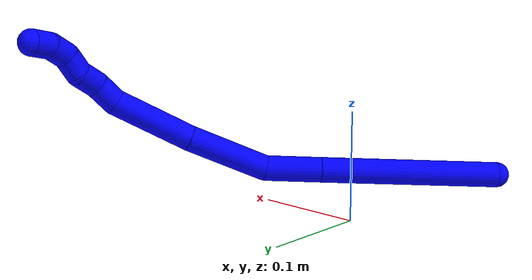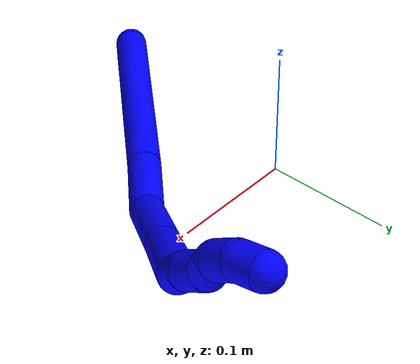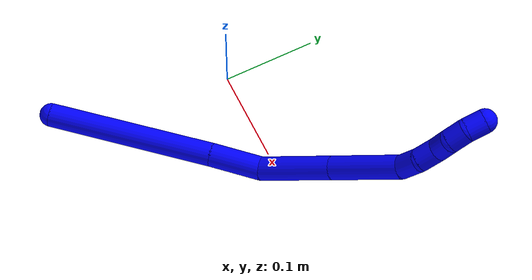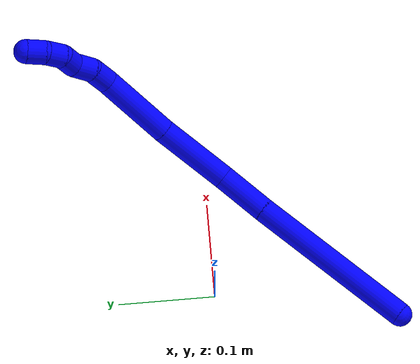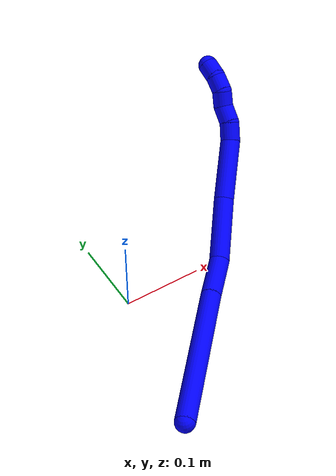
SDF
<sdf version="1.7">
 <world name="default">
  <plugin name="TubeGeneratorPlugin" filename="libtube_generator_plugin.so"/>
  <model name="photoneo_s_sensor">
   <static>1</static>
   <pose>0 0 2 1.57079 1.57079 3.14159</pose>
   <link name="link">
    <inertial><mass>0.1</mass></inertial>
    <sensor name="sensor" type="depth">
     <update_rate>30</update_rate>
     <camera>
      <horizontal_fov>1.22</horizontal_fov>
      <image><width>1920</width><height>1200</height><format>B8G8R8</format></image>
      <clip><near>0.1</near><far>4</far></clip>
      <depth_camera><output>points</output></depth_camera>
     </camera>
     <plugin name="camera_plugin" filename="libgazebo_ros_depth_camera.so">
      <baseline>0.2</baseline>
      <alwaysOn>1</alwaysOn>
      <updateRate>0.0</updateRate>
      <cameraName>camera_ir</cameraName>
      <imageTopicName>/camera/color/image_raw</imageTopicName>
      <cameraInfoTopicName>/camera/color/camera_info</cameraInfoTopicName>
      <depthImageTopicName>/camera/depth/image_raw</depthImageTopicName>
      <depthImageCameraInfoTopicName>/camera/depth/camera_info</depthImageCameraInfoTopicName>
      <pointCloudTopicName>/camera/depth/points</pointCloudTopicName>
      <frameName>fr_optical</frameName>
      <pointCloudCutoff>0.1</pointCloudCutoff>
      <pointCloudCutoffMax>2.0</pointCloudCutoffMax>
      <distortionK1>0</distortionK1>
      <distortionK2>0</distortionK2>
      <distortionK3>0</distortionK3>
      <distortionT1>0</distortionT1>
      <distortionT2>0</distortionT2>
      <CxPrime>0</CxPrime>
      <Cx>0</Cx>
      <Cy>0</Cy>
      <focalLength>0</focalLength>
      <hackBaseline>0</hackBaseline>
     </plugin>
    </sensor>
   </link>
  </model>
  <gravity>0 0 -9.8</gravity>
  <magnetic_field>6e-06 2.3e-05 -4.2e-05</magnetic_field>
  <atmosphere type="adiabatic"/>
  <physics name="default_physics" default="0" type="ode">
   <max_step_size>0.003</max_step_size>
   <real_time_factor>1</real_time_factor>
   <real_time_update_rate>1000</real_time_update_rate>
   <max_contacts>10000</max_contacts>
   <ode>
    <solver>
     <type>quick</type>
     <iters>100</iters>
     <sor>1.3</sor>
     <use_dynamic_moi_rescaling>0</use_dynamic_moi_rescaling>
    </solver>
    <constraints>
     <contact_max_correcting_vel>0</contact_max_correcting_vel>
     <contact_surface_layer>0.001</contact_surface_layer>
     <cfm>0</cfm>
     <erp>0.2</erp>
    </constraints>
   </ode>
  </physics>
  <scene><ambient>0.4 0.4 0.4 1</ambient><background>0.7 0.7 0.7 1</background><shadows>0</shadows></scene>
  <audio><device>default</device></audio>
  <spherical_coordinates>
   <surface_model>EARTH_WGS84</surface_model>
   <latitude_deg>0</latitude_deg>
   <longitude_deg>0</longitude_deg>
   <elevation>0</elevation>
   <heading_deg>0</heading_deg>
  </spherical_coordinates>
  <model name="bin">
   <static>1</static>
   <link name="bottom">
    <collision name="collision-bottom">
     <pose>0 0 -0.01 0 -0 0</pose>
     <geometry><box><size>0.8 0.6 0.02</size></box></geometry>
     <surface>
      <friction><ode><mu>100</mu><mu2>100</mu2></ode></friction>
      <contact><collide_bitmask>65535</collide_bitmask></contact>
     </surface>
    </collision>
   </link>
   <link name="west_wall">
    <collision name="collision-west_wall">
     <pose>-0.41 0 0.1 0 -0 0</pose>
     <geometry><box><size>0.02 0.6 0.2</size></box></geometry>
     <surface>
      <friction><ode><mu>100</mu><mu2>100</mu2></ode></friction>
      <contact><collide_bitmask>65535</collide_bitmask></contact>
     </surface>
    </collision>
   </link>
   <link name="east_wall">
    <collision name="collision-east_wall">
     <pose>0.41 0 0.1 0 -0 0</pose>
     <geometry><box><size>0.02 0.6 0.2</size></box></geometry>
     <surface>
      <friction><ode><mu>100</mu><mu2>100</mu2></ode></friction>
      <contact><collide_bitmask>65535</collide_bitmask></contact>
     </surface>
    </collision>
   </link>
   <link name="south_wall">
    <collision name="collision-south_wall">
     <pose>0 -0.31 0.1 0 -0 0</pose>
     <geometry><box><size>0.8 0.02 0.2</size></box></geometry>
     <surface>
      <friction><ode><mu>100</mu><mu2>100</mu2></ode></friction>
      <contact><collide_bitmask>65535</collide_bitmask></contact>
     </surface>
    </collision>
   </link>
   <link name="north_wall">
    <collision name="collision-north_wall">
     <pose>0 0.31 0.1 0 -0 0</pose>
     <geometry><box><size>0.8 0.02 0.2</size></box></geometry>
     <surface>
      <friction><ode><mu>100</mu><mu2>100</mu2></ode></friction>
      <contact><collide_bitmask>65535</collide_bitmask></contact>
     </surface>
    </collision>
   </link>
  </model>
  <model name="1">
   <static>0</static>
   <link name="1">
    <collision name="collision-cylinder-e_1_1_4">
     <pose>0.057961 0.067363 0.005713 -1.48619 0.708751 -0.655379</pose>
     <geometry><cylinder><radius>0.0125</radius><length>0.1781</length></cylinder></geometry>
     <surface>
      <friction><ode><mu>1.16</mu><mu2>1.16</mu2><slip1>0</slip1><slip2>0</slip2></ode></friction>
      <contact><ode><kp>1e+06</kp><kd>1</kd><max_vel>0</max_vel><min_depth>0.001</min_depth></ode></contact>
     </surface>
    </collision>
    <visual name="visual-cylinder-e_1_1_4">
     <pose>0.057961 0.067363 0.005713 -1.48619 0.708751 -0.655379</pose>
     <geometry><cylinder><radius>0.0125</radius><length>0.1781</length></cylinder></geometry>
     <material><ambient>0 0 1 1</ambient></material>
    </visual>
    <collision name="collision-cylinder-e_2_4_5">
     <pose>0.134404 0.155021 0.013 -1.49336 0.737161 -0.686548</pose>
     <geometry><cylinder><radius>0.0125</radius><length>0.054988</length></cylinder></geometry>
     <surface>
      <friction><ode><mu>1.16</mu><mu2>1.16</mu2><slip1>0</slip1><slip2>0</slip2></ode></friction>
      <contact><ode><kp>1e+06</kp><kd>1</kd><max_vel>0</max_vel><min_depth>0.001</min_depth></ode></contact>
     </surface>
    </collision>
    <visual name="visual-cylinder-e_2_4_5">
     <pose>0.134404 0.155021 0.013 -1.49336 0.737161 -0.686548</pose>
     <geometry><cylinder><radius>0.0125</radius><length>0.054988</length></cylinder></geometry>
     <material><ambient>0 0 1 1</ambient></material>
    </visual>
    <collision name="collision-cylinder-e_3_5_6">
     <pose>0.175587 0.203992 0.031905 -1.0272 0.59548 -0.3428</pose>
     <geometry><cylinder><radius>0.0125</radius><length>0.080945</length></cylinder></geometry>
     <surface>
      <friction><ode><mu>1.16</mu><mu2>1.16</mu2><slip1>0</slip1><slip2>0</slip2></ode></friction>
      <contact><ode><kp>1e+06</kp><kd>1</kd><max_vel>0</max_vel><min_depth>0.001</min_depth></ode></contact>
     </surface>
    </collision>
    <visual name="visual-cylinder-e_3_5_6">
     <pose>0.175587 0.203992 0.031905 -1.0272 0.59548 -0.3428</pose>
     <geometry><cylinder><radius>0.0125</radius><length>0.080945</length></cylinder></geometry>
     <material><ambient>0 0 1 1</ambient></material>
    </visual>
    <collision name="collision-cylinder-e_4_6_7">
     <pose>0.221179 0.258729 0.068408 -0.936501 0.615771 -0.318934</pose>
     <geometry><cylinder><radius>0.0125</radius><length>0.079264</length></cylinder></geometry>
     <surface>
      <friction><ode><mu>1.16</mu><mu2>1.16</mu2><slip1>0</slip1><slip2>0</slip2></ode></friction>
      <contact><ode><kp>1e+06</kp><kd>1</kd><max_vel>0</max_vel><min_depth>0.001</min_depth></ode></contact>
     </surface>
    </collision>
    <visual name="visual-cylinder-e_4_6_7">
     <pose>0.221179 0.258729 0.068408 -0.936501 0.615771 -0.318934</pose>
     <geometry><cylinder><radius>0.0125</radius><length>0.079264</length></cylinder></geometry>
     <material><ambient>0 0 1 1</ambient></material>
    </visual>
    <collision name="collision-cylinder-e_5_7_8">
     <pose>0.248406 0.291426 0.09659 -0.634909 0.369624 -0.122694</pose>
     <geometry><cylinder><radius>0.0125</radius><length>0.024003</length></cylinder></geometry>
     <surface>
      <friction><ode><mu>1.16</mu><mu2>1.16</mu2><slip1>0</slip1><slip2>0</slip2></ode></friction>
      <contact><ode><kp>1e+06</kp><kd>1</kd><max_vel>0</max_vel><min_depth>0.001</min_depth></ode></contact>
     </surface>
    </collision>
    <visual name="visual-cylinder-e_5_7_8">
     <pose>0.248406 0.291426 0.09659 -0.634909 0.369624 -0.122694</pose>
     <geometry><cylinder><radius>0.0125</radius><length>0.024003</length></cylinder></geometry>
     <material><ambient>0 0 1 1</ambient></material>
    </visual>
    <collision name="collision-cylinder-e_6_8_9">
     <pose>0.254187 0.306657 0.112637 -0.884697 0.129459 -0.061385</pose>
     <geometry><cylinder><radius>0.0125</radius><length>0.022402</length></cylinder></geometry>
     <surface>
      <friction><ode><mu>1.16</mu><mu2>1.16</mu2><slip1>0</slip1><slip2>0</slip2></ode></friction>
      <contact><ode><kp>1e+06</kp><kd>1</kd><max_vel>0</max_vel><min_depth>0.001</min_depth></ode></contact>
     </surface>
    </collision>
    <visual name="visual-cylinder-e_6_8_9">
     <pose>0.254187 0.306657 0.112637 -0.884697 0.129459 -0.061385</pose>
     <geometry><cylinder><radius>0.0125</radius><length>0.022402</length></cylinder></geometry>
     <material><ambient>0 0 1 1</ambient></material>
    </visual>
    <collision name="collision-cylinder-e_7_9_10">
     <pose>0.258141 0.319607 0.128404 -0.462768 0.251589 -0.059572</pose>
     <geometry><cylinder><radius>0.0125</radius><length>0.020147</length></cylinder></geometry>
     <surface>
      <friction><ode><mu>1.16</mu><mu2>1.16</mu2><slip1>0</slip1><slip2>0</slip2></ode></friction>
      <contact><ode><kp>1e+06</kp><kd>1</kd><max_vel>0</max_vel><min_depth>0.001</min_depth></ode></contact>
     </surface>
    </collision>
    <visual name="visual-cylinder-e_7_9_10">
     <pose>0.258141 0.319607 0.128404 -0.462768 0.251589 -0.059572</pose>
     <geometry><cylinder><radius>0.0125</radius><length>0.020147</length></cylinder></geometry>
     <material><ambient>0 0 1 1</ambient></material>
    </visual>
    <collision name="collision-cylinder-e_8_10_11">
     <pose>0.261425 0.331747 0.1434 -0.89308 0.07748 -0.037112</pose>
     <geometry><cylinder><radius>0.0125</radius><length>0.020046</length></cylinder></geometry>
     <surface>
      <friction><ode><mu>1.16</mu><mu2>1.16</mu2><slip1>0</slip1><slip2>0</slip2></ode></friction>
      <contact><ode><kp>1e+06</kp><kd>1</kd><max_vel>0</max_vel><min_depth>0.001</min_depth></ode></contact>
     </surface>
    </collision>
    <visual name="visual-cylinder-e_8_10_11">
     <pose>0.261425 0.331747 0.1434 -0.89308 0.07748 -0.037112</pose>
     <geometry><cylinder><radius>0.0125</radius><length>0.020046</length></cylinder></geometry>
     <material><ambient>0 0 1 1</ambient></material>
    </visual>
    <collision name="collision-cylinder-e_9_11_2">
     <pose>0.262499 0.349032 0.152937 -1.23921 0.029716 -0.021197</pose>
     <geometry><cylinder><radius>0.0125</radius><length>0.020104</length></cylinder></geometry>
     <surface>
      <friction><ode><mu>1.16</mu><mu2>1.16</mu2><slip1>0</slip1><slip2>0</slip2></ode></friction>
      <contact><ode><kp>1e+06</kp><kd>1</kd><max_vel>0</max_vel><min_depth>0.001</min_depth></ode></contact>
     </surface>
    </collision>
    <visual name="visual-cylinder-e_9_11_2">
     <pose>0.262499 0.349032 0.152937 -1.23921 0.029716 -0.021197</pose>
     <geometry><cylinder><radius>0.0125</radius><length>0.020104</length></cylinder></geometry>
     <material><ambient>0 0 1 1</ambient></material>
    </visual>
    <collision name="collision-sphere-2">
     <pose>0.262798 0.358532 0.156208 0 -0 0</pose>
     <geometry><sphere><radius>0.0125</radius></sphere></geometry>
     <surface>
      <friction><ode><mu>1.16</mu><mu2>1.16</mu2><slip1>0</slip1><slip2>0</slip2></ode></friction>
      <contact><ode><kp>1e+06</kp><kd>1</kd><max_vel>0</max_vel><min_depth>0.001</min_depth></ode></contact>
     </surface>
    </collision>
    <visual name="visual-sphere-2">
     <pose>0.262798 0.358532 0.156208 0 -0 0</pose>
     <geometry><sphere><radius>0.0125</radius></sphere></geometry>
     <material><ambient>0 0 1 1</ambient></material>
    </visual>
    <collision name="collision-sphere-11">
     <pose>0.262201 0.339531 0.149666 0 -0 0</pose>
     <geometry><sphere><radius>0.0125</radius></sphere></geometry>
     <surface>
      <friction><ode><mu>1.16</mu><mu2>1.16</mu2><slip1>0</slip1><slip2>0</slip2></ode></friction>
      <contact><ode><kp>1e+06</kp><kd>1</kd><max_vel>0</max_vel><min_depth>0.001</min_depth></ode></contact>
     </surface>
    </collision>
    <visual name="visual-sphere-11">
     <pose>0.262201 0.339531 0.149666 0 -0 0</pose>
     <geometry><sphere><radius>0.0125</radius></sphere></geometry>
     <material><ambient>0 0 1 1</ambient></material>
    </visual>
    <collision name="collision-sphere-10">
     <pose>0.260649 0.323962 0.137135 0 -0 0</pose>
     <geometry><sphere><radius>0.0125</radius></sphere></geometry>
     <surface>
      <friction><ode><mu>1.16</mu><mu2>1.16</mu2><slip1>0</slip1><slip2>0</slip2></ode></friction>
      <contact><ode><kp>1e+06</kp><kd>1</kd><max_vel>0</max_vel><min_depth>0.001</min_depth></ode></contact>
     </surface>
    </collision>
    <visual name="visual-sphere-10">
     <pose>0.260649 0.323962 0.137135 0 -0 0</pose>
     <geometry><sphere><radius>0.0125</radius></sphere></geometry>
     <material><ambient>0 0 1 1</ambient></material>
    </visual>
    <collision name="collision-sphere-9">
     <pose>0.255633 0.315251 0.119674 0 -0 0</pose>
     <geometry><sphere><radius>0.0125</radius></sphere></geometry>
     <surface>
      <friction><ode><mu>1.16</mu><mu2>1.16</mu2><slip1>0</slip1><slip2>0</slip2></ode></friction>
      <contact><ode><kp>1e+06</kp><kd>1</kd><max_vel>0</max_vel><min_depth>0.001</min_depth></ode></contact>
     </surface>
    </collision>
    <visual name="visual-sphere-9">
     <pose>0.255633 0.315251 0.119674 0 -0 0</pose>
     <geometry><sphere><radius>0.0125</radius></sphere></geometry>
     <material><ambient>0 0 1 1</ambient></material>
    </visual>
    <collision name="collision-sphere-4">
     <pose>0.115923 0.134726 0.011426 0 -0 0</pose>
     <geometry><sphere><radius>0.0125</radius></sphere></geometry>
     <surface>
      <friction><ode><mu>1.16</mu><mu2>1.16</mu2><slip1>0</slip1><slip2>0</slip2></ode></friction>
      <contact><ode><kp>1e+06</kp><kd>1</kd><max_vel>0</max_vel><min_depth>0.001</min_depth></ode></contact>
     </surface>
    </collision>
    <visual name="visual-sphere-4">
     <pose>0.115923 0.134726 0.011426 0 -0 0</pose>
     <geometry><sphere><radius>0.0125</radius></sphere></geometry>
     <material><ambient>0 0 1 1</ambient></material>
    </visual>
    <collision name="collision-sphere-1">
     <geometry><sphere><radius>0.0125</radius></sphere></geometry>
     <surface>
      <friction><ode><mu>1.16</mu><mu2>1.16</mu2><slip1>0</slip1><slip2>0</slip2></ode></friction>
      <contact><ode><kp>1e+06</kp><kd>1</kd><max_vel>0</max_vel><min_depth>0.001</min_depth></ode></contact>
     </surface>
    </collision>
    <visual name="visual-sphere-1">
     <geometry><sphere><radius>0.0125</radius></sphere></geometry>
     <material><ambient>0 0 1 1</ambient></material>
    </visual>
    <collision name="collision-sphere-8">
     <pose>0.252741 0.298063 0.105601 0 -0 0</pose>
     <geometry><sphere><radius>0.0125</radius></sphere></geometry>
     <surface>
      <friction><ode><mu>1.16</mu><mu2>1.16</mu2><slip1>0</slip1><slip2>0</slip2></ode></friction>
      <contact><ode><kp>1e+06</kp><kd>1</kd><max_vel>0</max_vel><min_depth>0.001</min_depth></ode></contact>
     </surface>
    </collision>
    <visual name="visual-sphere-8">
     <pose>0.252741 0.298063 0.105601 0 -0 0</pose>
     <geometry><sphere><radius>0.0125</radius></sphere></geometry>
     <material><ambient>0 0 1 1</ambient></material>
    </visual>
    <collision name="collision-sphere-5">
     <pose>0.152886 0.175316 0.014575 0 -0 0</pose>
     <geometry><sphere><radius>0.0125</radius></sphere></geometry>
     <surface>
      <friction><ode><mu>1.16</mu><mu2>1.16</mu2><slip1>0</slip1><slip2>0</slip2></ode></friction>
      <contact><ode><kp>1e+06</kp><kd>1</kd><max_vel>0</max_vel><min_depth>0.001</min_depth></ode></contact>
     </surface>
    </collision>
    <visual name="visual-sphere-5">
     <pose>0.152886 0.175316 0.014575 0 -0 0</pose>
     <geometry><sphere><radius>0.0125</radius></sphere></geometry>
     <material><ambient>0 0 1 1</ambient></material>
    </visual>
    <collision name="collision-sphere-6">
     <pose>0.198288 0.232669 0.049235 0 -0 0</pose>
     <geometry><sphere><radius>0.0125</radius></sphere></geometry>
     <surface>
      <friction><ode><mu>1.16</mu><mu2>1.16</mu2><slip1>0</slip1><slip2>0</slip2></ode></friction>
      <contact><ode><kp>1e+06</kp><kd>1</kd><max_vel>0</max_vel><min_depth>0.001</min_depth></ode></contact>
     </surface>
    </collision>
    <visual name="visual-sphere-6">
     <pose>0.198288 0.232669 0.049235 0 -0 0</pose>
     <geometry><sphere><radius>0.0125</radius></sphere></geometry>
     <material><ambient>0 0 1 1</ambient></material>
    </visual>
    <collision name="collision-sphere-7">
     <pose>0.24407 0.284788 0.08758 0 -0 0</pose>
     <geometry><sphere><radius>0.0125</radius></sphere></geometry>
     <surface>
      <friction><ode><mu>1.16</mu><mu2>1.16</mu2><slip1>0</slip1><slip2>0</slip2></ode></friction>
      <contact><ode><kp>1e+06</kp><kd>1</kd><max_vel>0</max_vel><min_depth>0.001</min_depth></ode></contact>
     </surface>
    </collision>
    <visual name="visual-sphere-7">
     <pose>0.24407 0.284788 0.08758 0 -0 0</pose>
     <geometry><sphere><radius>0.0125</radius></sphere></geometry>
     <material><ambient>0 0 1 1</ambient></material>
    </visual>
    <inertial>
     <pose>0.153667 0.183026 0.04623 0 -0 0</pose>
     <mass>0.5</mass>
     <inertia>
      <ixx>0.000143</ixx>
      <ixy>0</ixy>
      <ixz>0</ixz>
      <iyy>7.1e-05</iyy>
      <iyz>0</iyz>
      <izz>-0.000805</izz>
     </inertia>
    </inertial>
   </link>
   <pose>-0.037919 -0.18846 0.012266 -0.091186 -0.088329 -0.04152</pose>
  </model>
 </world>
</sdf>
